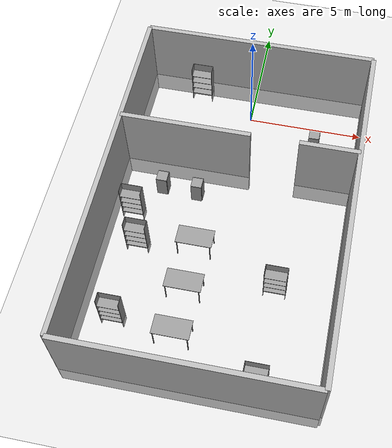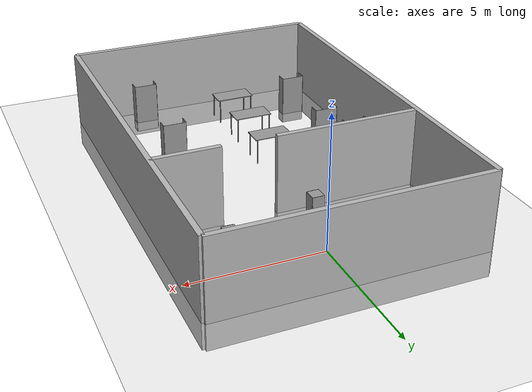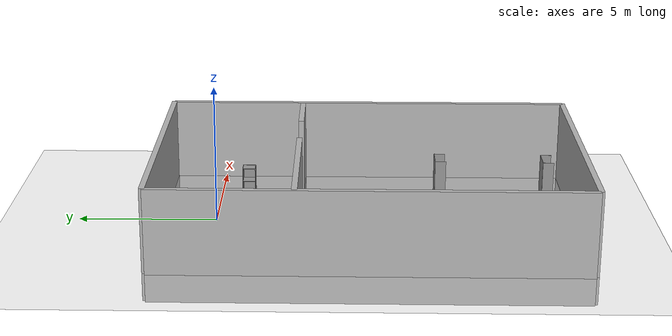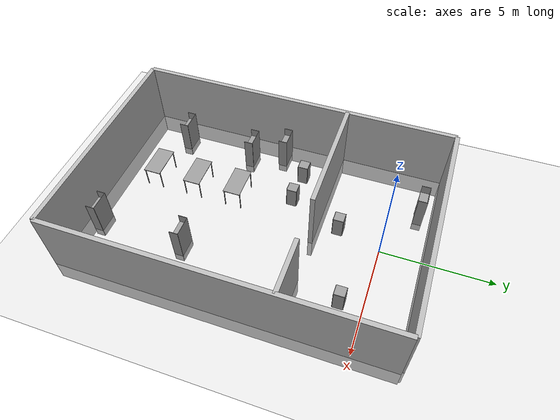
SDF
<sdf version="1.4">
 <world name="default">
  <physics type="ode">
   <gravity>0.000000 0.000000 -9.810000</gravity>
   <ode>
    <solver><type>quick</type><iters>20</iters><sor>1.000000</sor></solver>
    <constraints>
     <cfm>0.000000</cfm>
     <erp>0.200000</erp>
     <contact_max_correcting_vel>100.000000</contact_max_correcting_vel>
     <contact_surface_layer>0.000000</contact_surface_layer>
    </constraints>
   </ode>
   <real_time_update_rate>1000.000000</real_time_update_rate>
   <max_step_size>0.001000</max_step_size>
   <real_time_factor>1.000000</real_time_factor>
   <max_contacts>20</max_contacts>
  </physics>
  <plugin name="gz::sim::systems::Physics" filename="gz-sim-physics-system"/>
  <plugin name="gz::sim::systems::UserCommands" filename="gz-sim-user-commands-system"/>
  <plugin name="gz::sim::systems::SceneBroadcaster" filename="gz-sim-scene-broadcaster-system"/>
  <plugin name="gz::sim::systems::Contact" filename="gz-sim-contact-system"/>
  <plugin name="gz::sim::systems::Imu" filename="gz-sim-imu-system"/>
  <plugin name="gz::sim::systems::AirPressure" filename="gz-sim-air-pressure-system"/>
  <plugin name="gz::sim::systems::AirSpeed" filename="gz-sim-air-speed-system"/>
  <plugin name="gz::sim::systems::ApplyLinkWrench" filename="gz-sim-apply-link-wrench-system"/>
  <plugin name="gz::sim::systems::NavSat" filename="gz-sim-navsat-system"/>
  <plugin name="gz::sim::systems::Sensors" filename="gz-sim-sensors-system"/>
  <light name="sun" type="directional">
   <pose>0.000000 0.000000 10.000000 0.000000 0.000000 0.000000</pose>
   <diffuse>0.800000 0.800000 0.800000 1.000000</diffuse>
   <specular>0.200000 0.200000 0.200000 1.000000</specular>
   <attenuation>
    <range>1000.000000</range>
    <constant>0.900000</constant>
    <linear>0.010000</linear>
    <quadratic>0.001000</quadratic>
   </attenuation>
   <direction>0.500000 0.100000 -0.900000</direction>
  </light>
  <model name="ground_plane">
   <static>1</static>
   <link name="link">
    <collision name="collision">
     <geometry>
      <plane><normal>0.000000 0.000000 1.000000</normal><size>100.000000 100.000000</size></plane>
     </geometry>
     <surface><friction><ode><mu>100.000000</mu><mu2>50.000000</mu2></ode></friction></surface>
    </collision>
    <visual name="visual">
     <cast_shadows>0</cast_shadows>
     <geometry>
      <plane><normal>0.000000 0.000000 1.000000</normal><size>100.000000 100.000000</size></plane>
     </geometry>
     <material><script><uri>file://media/gazebo.material</uri><name>Gazebo/Grey</name></script></material>
    </visual>
    <velocity_decay><linear>0.000000</linear><angular>0.000000</angular></velocity_decay>
   </link>
  </model>
  <model name="wall_1_model">
   <pose>0.0 -13.0 1.0 0.0 0.0 0.0</pose>
   <static>1</static>
   <link name="wall_1_body">
    <inertial>
     <mass>1.000000</mass>
     <inertia>
      <ixx>1.000000</ixx>
      <ixy>0.000000</ixy>
      <ixz>0.000000</ixz>
      <iyy>1.000000</iyy>
      <iyz>0.000000</iyz>
      <izz>1.000000</izz>
     </inertia>
    </inertial>
    <collision name="collision">
     <geometry><box><size>10.000000 0.200000 4.000000</size></box></geometry>
    </collision>
    <visual name="visual"><geometry><box><size>10.000000 0.200000 4.000000</size></box></geometry></visual>
    <velocity_decay><linear>0.000000</linear><angular>0.000000</angular></velocity_decay>
   </link>
  </model>
  <model name="wall_2_model">
   <pose>0.0 2.0 1.0 0.0 0.0 0.0</pose>
   <static>1</static>
   <link name="wall_2_body">
    <inertial>
     <mass>1.000000</mass>
     <inertia>
      <ixx>1.000000</ixx>
      <ixy>0.000000</ixy>
      <ixz>0.000000</ixz>
      <iyy>1.000000</iyy>
      <iyz>0.000000</iyz>
      <izz>1.000000</izz>
     </inertia>
    </inertial>
    <collision name="collision">
     <geometry><box><size>10.000000 0.200000 4.000000</size></box></geometry>
    </collision>
    <visual name="visual"><geometry><box><size>10.000000 0.200000 4.000000</size></box></geometry></visual>
    <velocity_decay><linear>0.000000</linear><angular>0.000000</angular></velocity_decay>
   </link>
  </model>
  <model name="wall_3_model">
   <pose>-5.0 -5.5 1.0 0.0 0.0 0.0</pose>
   <static>1</static>
   <link name="wall_3_body">
    <inertial>
     <mass>1.000000</mass>
     <inertia>
      <ixx>1.000000</ixx>
      <ixy>0.000000</ixy>
      <ixz>0.000000</ixz>
      <iyy>1.000000</iyy>
      <iyz>0.000000</iyz>
      <izz>1.000000</izz>
     </inertia>
    </inertial>
    <collision name="collision">
     <geometry><box><size>0.200000 15.000000 4.000000</size></box></geometry>
    </collision>
    <visual name="visual"><geometry><box><size>0.200000 15.000000 4.000000</size></box></geometry></visual>
    <velocity_decay><linear>0.000000</linear><angular>0.000000</angular></velocity_decay>
   </link>
  </model>
  <model name="wall_4_model">
   <pose>5.0 -5.5 1.0 0.0 0.0 0.0</pose>
   <static>1</static>
   <link name="wall_4_body">
    <inertial>
     <mass>1.000000</mass>
     <inertia>
      <ixx>1.000000</ixx>
      <ixy>0.000000</ixy>
      <ixz>0.000000</ixz>
      <iyy>1.000000</iyy>
      <iyz>0.000000</iyz>
      <izz>1.000000</izz>
     </inertia>
    </inertial>
    <collision name="collision">
     <geometry><box><size>0.200000 15.000000 4.000000</size></box></geometry>
    </collision>
    <visual name="visual"><geometry><box><size>0.200000 15.000000 4.000000</size></box></geometry></visual>
    <velocity_decay><linear>0.000000</linear><angular>0.000000</angular></velocity_decay>
   </link>
  </model>
  <model name="wall_5_model">
   <pose>-2.25 -3.0 1.0 0.0 0.0 0.0</pose>
   <static>1</static>
   <link name="wall_5_body">
    <inertial>
     <mass>1.000000</mass>
     <inertia>
      <ixx>1.000000</ixx>
      <ixy>0.000000</ixy>
      <ixz>0.000000</ixz>
      <iyy>1.000000</iyy>
      <iyz>0.000000</iyz>
      <izz>1.000000</izz>
     </inertia>
    </inertial>
    <collision name="collision">
     <geometry><box><size>5.500000 0.200000 4.000000</size></box></geometry>
    </collision>
    <visual name="visual"><geometry><box><size>5.500000 0.200000 4.000000</size></box></geometry></visual>
    <velocity_decay><linear>0.000000</linear><angular>0.000000</angular></velocity_decay>
   </link>
  </model>
  <model name="wall_6_model">
   <pose>3.75 -3.0 1.0 0.0 0.0 0.0</pose>
   <static>1</static>
   <link name="wall_6_body">
    <inertial>
     <mass>1.000000</mass>
     <inertia>
      <ixx>1.000000</ixx>
      <ixy>0.000000</ixy>
      <ixz>0.000000</ixz>
      <iyy>1.000000</iyy>
      <iyz>0.000000</iyz>
      <izz>1.000000</izz>
     </inertia>
    </inertial>
    <collision name="collision">
     <geometry><box><size>2.500000 0.200000 4.000000</size></box></geometry>
    </collision>
    <visual name="visual"><geometry><box><size>2.500000 0.200000 4.000000</size></box></geometry></visual>
    <velocity_decay><linear>0.000000</linear><angular>0.000000</angular></velocity_decay>
   </link>
  </model>
  <scene>
   <ambient>0.200000 0.200000 0.200000 1.000000</ambient>
   <background>0.700000 0.700000 0.700000 1.000000</background>
   <shadows>1</shadows>
  </scene>
  <model name="bookshelf_1">
   <static>1</static>
   <link name="link">
    <inertial><mass>1.000000</mass></inertial>
    <collision name="back">
     <pose>0.000000 0.005000 0.600000 0.000000 0.000000 0.000000</pose>
     <geometry><box><size>0.900000 0.010000 2.00000</size></box></geometry>
    </collision>
    <visual name="visual1">
     <pose>0.000000 0.005000 0.600000 0.000000 0.000000 0.000000</pose>
     <geometry><box><size>0.900000 0.010000 2.00000</size></box></geometry>
     <material><script><uri>file://media/gazebo.material</uri><name>Gazebo/Grey</name></script></material>
    </visual>
    <collision name="left_side">
     <pose>0.450000 -0.195000 0.600000 0.000000 0.000000 0.000000</pose>
     <geometry><box><size>0.020000 0.400000 2.00000</size></box></geometry>
    </collision>
    <visual name="visual2">
     <pose>0.450000 -0.195000 0.600000 0.000000 0.000000 0.000000</pose>
     <geometry><box><size>0.020000 0.400000 2.00000</size></box></geometry>
     <material><script><uri>file://media/gazebo.material</uri><name>Gazebo/Grey</name></script></material>
    </visual>
    <collision name="right_side">
     <pose>-0.450000 -0.195000 0.600000 0.000000 0.000000 0.000000</pose>
     <geometry><box><size>0.020000 0.400000 2.00000</size></box></geometry>
    </collision>
    <visual name="visual3">
     <pose>-0.450000 -0.195000 0.600000 0.000000 0.000000 0.000000</pose>
     <geometry><box><size>0.020000 0.400000 2.00000</size></box></geometry>
     <material><script><uri>file://media/gazebo.material</uri><name>Gazebo/Grey</name></script></material>
    </visual>
    <collision name="bottom">
     <pose>0.000000 -0.195000 0.030000 0.000000 0.000000 0.000000</pose>
     <geometry><box><size>0.880000 0.400000 0.060000</size></box></geometry>
    </collision>
    <visual name="visual4">
     <pose>0.000000 -0.195000 0.030000 0.000000 0.000000 0.000000</pose>
     <geometry><box><size>0.880000 0.400000 0.060000</size></box></geometry>
     <material><script><uri>file://media/gazebo.material</uri><name>Gazebo/Grey</name></script></material>
    </visual>
    <collision name="top">
     <pose>0.000000 -0.195000 1.190000 0.000000 0.000000 0.000000</pose>
     <geometry><box><size>0.880000 0.400000 0.020000</size></box></geometry>
    </collision>
    <visual name="visual5">
     <pose>0.000000 -0.195000 1.190000 0.000000 0.000000 0.000000</pose>
     <geometry><box><size>0.880000 0.400000 0.020000</size></box></geometry>
     <material><script><uri>file://media/gazebo.material</uri><name>Gazebo/Grey</name></script></material>
    </visual>
    <collision name="low_shelf">
     <pose>0.000000 -0.195000 0.430000 0.000000 0.000000 0.000000</pose>
     <geometry><box><size>0.880000 0.400000 0.020000</size></box></geometry>
    </collision>
    <visual name="visual6">
     <pose>0.000000 -0.195000 0.430000 0.000000 0.000000 0.000000</pose>
     <geometry><box><size>0.880000 0.400000 0.020000</size></box></geometry>
     <material><script><uri>file://media/gazebo.material</uri><name>Gazebo/Grey</name></script></material>
    </visual>
    <collision name="high_shelf">
     <pose>0.000000 -0.195000 0.800000 0.000000 0.000000 0.000000</pose>
     <geometry><box><size>0.880000 0.400000 0.020000</size></box></geometry>
    </collision>
    <visual name="visual7">
     <pose>0.000000 -0.195000 0.800000 0.000000 0.000000 0.000000</pose>
     <geometry><box><size>0.880000 0.400000 0.020000</size></box></geometry>
     <material><script><uri>file://media/gazebo.material</uri><name>Gazebo/Grey</name></script></material>
    </visual>
    <velocity_decay><linear>0.000000</linear><angular>0.000000</angular></velocity_decay>
   </link>
   <pose>-2.49816 1.46785 0.0 0.0 0.0 0.0</pose>
  </model>
  <model name="table">
   <static>1</static>
   <link name="link">
    <collision name="surface">
     <pose>0.000000 0.000000 1.000000 0.000000 0.000000 0.000000</pose>
     <geometry><box><size>1.500000 0.800000 0.030000</size></box></geometry>
    </collision>
    <visual name="visual1">
     <pose>0.000000 0.000000 1.000000 0.000000 0.000000 0.000000</pose>
     <geometry><box><size>1.500000 0.800000 0.030000</size></box></geometry>
     <material><script><uri>file://media/gazebo.material</uri><name>Gazebo/Grey</name></script></material>
    </visual>
    <collision name="front_left_leg">
     <pose>0.680000 0.380000 0.500000 0.000000 0.000000 0.000000</pose>
     <geometry><cylinder><radius>0.020000</radius><length>1.000000</length></cylinder></geometry>
    </collision>
    <visual name="front_left_leg">
     <pose>0.680000 0.380000 0.500000 0.000000 0.000000 0.000000</pose>
     <geometry><cylinder><radius>0.020000</radius><length>1.000000</length></cylinder></geometry>
     <material><script><uri>file://media/gazebo.material</uri><name>Gazebo/Grey</name></script></material>
    </visual>
    <collision name="front_right_leg">
     <pose>0.680000 -0.380000 0.500000 0.000000 0.000000 0.000000</pose>
     <geometry><cylinder><radius>0.020000</radius><length>1.000000</length></cylinder></geometry>
    </collision>
    <visual name="front_right_leg">
     <pose>0.680000 -0.380000 0.500000 0.000000 0.000000 0.000000</pose>
     <geometry><cylinder><radius>0.020000</radius><length>1.000000</length></cylinder></geometry>
     <material><script><uri>file://media/gazebo.material</uri><name>Gazebo/Grey</name></script></material>
    </visual>
    <collision name="back_right_leg">
     <pose>-0.680000 -0.380000 0.500000 0.000000 0.000000 0.000000</pose>
     <geometry><cylinder><radius>0.020000</radius><length>1.000000</length></cylinder></geometry>
    </collision>
    <visual name="back_right_leg">
     <pose>-0.680000 -0.380000 0.500000 0.000000 0.000000 0.000000</pose>
     <geometry><cylinder><radius>0.020000</radius><length>1.000000</length></cylinder></geometry>
     <material><script><uri>file://media/gazebo.material</uri><name>Gazebo/Grey</name></script></material>
    </visual>
    <collision name="back_left_leg">
     <pose>-0.680000 0.380000 0.500000 0.000000 0.000000 0.000000</pose>
     <geometry><cylinder><radius>0.020000</radius><length>1.000000</length></cylinder></geometry>
    </collision>
    <visual name="back_left_leg">
     <pose>-0.680000 0.380000 0.500000 0.000000 0.000000 0.000000</pose>
     <geometry><cylinder><radius>0.020000</radius><length>1.000000</length></cylinder></geometry>
     <material><script><uri>file://media/gazebo.material</uri><name>Gazebo/Grey</name></script></material>
    </visual>
    <velocity_decay><linear>0.000000</linear><angular>0.000000</angular></velocity_decay>
   </link>
   <pose>-1.0 -9.0 0.0 0.0 0.0 0.0</pose>
  </model>
  <model name="cabinet_1">
   <static>1</static>
   <link name="cabinet_bottom_plate">
    <inertial>
     <pose>0.000000 0.000000 -1.000000 0.000000 0.000000 0.000000</pose>
     <inertia>
      <ixx>2.050000</ixx>
      <ixy>0.000000</ixy>
      <ixz>0.000000</ixz>
      <iyy>2.050000</iyy>
      <iyz>0.000000</iyz>
      <izz>2.050000</izz>
     </inertia>
     <mass>25.000000</mass>
    </inertial>
    <collision name="cabinet_bottom_plate_geom">
     <pose>0.000000 0.000000 0.010000 0.000000 0.000000 0.000000</pose>
     <geometry><box><size>0.450000 0.450000 0.020000</size></box></geometry>
    </collision>
    <visual name="cabinet_bottom_plate_geom_visual">
     <pose>0.000000 0.000000 0.010000 0.000000 0.000000 0.000000</pose>
     <geometry><box><size>0.450000 0.450000 0.020000</size></box></geometry>
     <material><script><uri>file://media/gazebo.material</uri><name>Gazebo/Grey</name></script></material>
    </visual>
    <collision name="cabinet_bottom_plate_geom_cabinet_back_plate">
     <pose>0.235000 0.000000 0.510000 0.000000 0.000000 0.000000</pose>
     <geometry><box><size>0.020000 0.450000 1.020000</size></box></geometry>
    </collision>
    <visual name="cabinet_bottom_plate_geom_cabinet_back_plate_visual">
     <pose>0.235000 0.000000 0.510000 0.000000 0.000000 0.000000</pose>
     <geometry><box><size>0.020000 0.450000 1.020000</size></box></geometry>
     <material><script><uri>file://media/gazebo.material</uri><name>Gazebo/Grey</name></script></material>
    </visual>
    <collision name="cabinet_bottom_plate_geom_cabinet_left_plate">
     <pose>0.000000 0.235000 0.510000 0.000000 0.000000 0.000000</pose>
     <geometry><box><size>0.450000 0.020000 1.020000</size></box></geometry>
    </collision>
    <visual name="cabinet_bottom_plate_geom_cabinet_left_plate_visual">
     <pose>0.000000 0.235000 0.510000 0.000000 0.000000 0.000000</pose>
     <geometry><box><size>0.450000 0.020000 1.020000</size></box></geometry>
     <material><script><uri>file://media/gazebo.material</uri><name>Gazebo/Grey</name></script></material>
    </visual>
    <collision name="cabinet_bottom_plate_geom_cabinet_middle_plate">
     <pose>0.000000 0.000000 0.510000 0.000000 0.000000 0.000000</pose>
     <geometry><box><size>0.450000 0.450000 0.020000</size></box></geometry>
    </collision>
    <visual name="cabinet_bottom_plate_geom_cabinet_middle_plate_visual">
     <pose>0.000000 0.000000 0.510000 0.000000 0.000000 0.000000</pose>
     <geometry><box><size>0.450000 0.450000 0.020000</size></box></geometry>
     <material><script><uri>file://media/gazebo.material</uri><name>Gazebo/Grey</name></script></material>
    </visual>
    <collision name="cabinet_bottom_plate_geom_cabinet_right_plate">
     <pose>0.000000 -0.235000 0.510000 0.000000 0.000000 0.000000</pose>
     <geometry><box><size>0.450000 0.020000 1.020000</size></box></geometry>
    </collision>
    <visual name="cabinet_bottom_plate_geom_cabinet_right_plate_visual">
     <pose>0.000000 -0.235000 0.510000 0.000000 0.000000 0.000000</pose>
     <geometry><box><size>0.450000 0.020000 1.020000</size></box></geometry>
     <material><script><uri>file://media/gazebo.material</uri><name>Gazebo/Grey</name></script></material>
    </visual>
    <collision name="cabinet_bottom_plate_geom_cabinet_top_plate">
     <pose>0.000000 0.000000 1.010000 0.000000 0.000000 0.000000</pose>
     <geometry><box><size>0.450000 0.450000 0.020000</size></box></geometry>
    </collision>
    <visual name="cabinet_bottom_plate_geom_cabinet_top_plate_visual">
     <pose>0.000000 0.000000 1.010000 0.000000 0.000000 0.000000</pose>
     <geometry><box><size>0.450000 0.450000 0.020000</size></box></geometry>
     <material><script><uri>file://media/gazebo.material</uri><name>Gazebo/Grey</name></script></material>
    </visual>
    <velocity_decay><linear>0.000000</linear><angular>0.000000</angular></velocity_decay>
   </link>
   <pose>-3.0 -4.40005 0.0 0.0 0.0 0.0</pose>
  </model>
  <model name="cabinet_2">
   <static>1</static>
   <link name="cabinet_bottom_plate">
    <inertial>
     <pose>0.000000 0.000000 -1.000000 0.000000 0.000000 0.000000</pose>
     <inertia>
      <ixx>2.050000</ixx>
      <ixy>0.000000</ixy>
      <ixz>0.000000</ixz>
      <iyy>2.050000</iyy>
      <iyz>0.000000</iyz>
      <izz>2.050000</izz>
     </inertia>
     <mass>25.000000</mass>
    </inertial>
    <collision name="cabinet_bottom_plate_geom">
     <pose>0.000000 0.000000 0.010000 0.000000 0.000000 0.000000</pose>
     <geometry><box><size>0.450000 0.450000 0.020000</size></box></geometry>
    </collision>
    <visual name="cabinet_bottom_plate_geom_visual">
     <pose>0.000000 0.000000 0.010000 0.000000 0.000000 0.000000</pose>
     <geometry><box><size>0.450000 0.450000 0.020000</size></box></geometry>
     <material><script><uri>file://media/gazebo.material</uri><name>Gazebo/Grey</name></script></material>
    </visual>
    <collision name="cabinet_bottom_plate_geom_cabinet_back_plate">
     <pose>0.235000 0.000000 0.510000 0.000000 0.000000 0.000000</pose>
     <geometry><box><size>0.020000 0.450000 1.020000</size></box></geometry>
    </collision>
    <visual name="cabinet_bottom_plate_geom_cabinet_back_plate_visual">
     <pose>0.235000 0.000000 0.510000 0.000000 0.000000 0.000000</pose>
     <geometry><box><size>0.020000 0.450000 1.020000</size></box></geometry>
     <material><script><uri>file://media/gazebo.material</uri><name>Gazebo/Grey</name></script></material>
    </visual>
    <collision name="cabinet_bottom_plate_geom_cabinet_left_plate">
     <pose>0.000000 0.235000 0.510000 0.000000 0.000000 0.000000</pose>
     <geometry><box><size>0.450000 0.020000 1.020000</size></box></geometry>
    </collision>
    <visual name="cabinet_bottom_plate_geom_cabinet_left_plate_visual">
     <pose>0.000000 0.235000 0.510000 0.000000 0.000000 0.000000</pose>
     <geometry><box><size>0.450000 0.020000 1.020000</size></box></geometry>
     <material><script><uri>file://media/gazebo.material</uri><name>Gazebo/Grey</name></script></material>
    </visual>
    <collision name="cabinet_bottom_plate_geom_cabinet_middle_plate">
     <pose>0.000000 0.000000 0.510000 0.000000 0.000000 0.000000</pose>
     <geometry><box><size>0.450000 0.450000 0.020000</size></box></geometry>
    </collision>
    <visual name="cabinet_bottom_plate_geom_cabinet_middle_plate_visual">
     <pose>0.000000 0.000000 0.510000 0.000000 0.000000 0.000000</pose>
     <geometry><box><size>0.450000 0.450000 0.020000</size></box></geometry>
     <material><script><uri>file://media/gazebo.material</uri><name>Gazebo/Grey</name></script></material>
    </visual>
    <collision name="cabinet_bottom_plate_geom_cabinet_right_plate">
     <pose>0.000000 -0.235000 0.510000 0.000000 0.000000 0.000000</pose>
     <geometry><box><size>0.450000 0.020000 1.020000</size></box></geometry>
    </collision>
    <visual name="cabinet_bottom_plate_geom_cabinet_right_plate_visual">
     <pose>0.000000 -0.235000 0.510000 0.000000 0.000000 0.000000</pose>
     <geometry><box><size>0.450000 0.020000 1.020000</size></box></geometry>
     <material><script><uri>file://media/gazebo.material</uri><name>Gazebo/Grey</name></script></material>
    </visual>
    <collision name="cabinet_bottom_plate_geom_cabinet_top_plate">
     <pose>0.000000 0.000000 1.010000 0.000000 0.000000 0.000000</pose>
     <geometry><box><size>0.450000 0.450000 0.020000</size></box></geometry>
    </collision>
    <visual name="cabinet_bottom_plate_geom_cabinet_top_plate_visual">
     <pose>0.000000 0.000000 1.010000 0.000000 0.000000 0.000000</pose>
     <geometry><box><size>0.450000 0.450000 0.020000</size></box></geometry>
     <material><script><uri>file://media/gazebo.material</uri><name>Gazebo/Grey</name></script></material>
    </visual>
    <velocity_decay><linear>0.000000</linear><angular>0.000000</angular></velocity_decay>
   </link>
   <pose>-1.49183 -4.45622 0.0 0.0 0.0 0.0</pose>
  </model>
  <model name="bookshelf_2">
   <static>1</static>
   <link name="link">
    <inertial><mass>1.000000</mass></inertial>
    <collision name="back">
     <pose>0.000000 0.005000 0.600000 0.000000 0.000000 0.000000</pose>
     <geometry><box><size>0.900000 0.010000 2.00000</size></box></geometry>
    </collision>
    <visual name="visual1">
     <pose>0.000000 0.005000 0.600000 0.000000 0.000000 0.000000</pose>
     <geometry><box><size>0.900000 0.010000 2.00000</size></box></geometry>
     <material><script><uri>file://media/gazebo.material</uri><name>Gazebo/Grey</name></script></material>
    </visual>
    <collision name="left_side">
     <pose>0.450000 -0.195000 0.600000 0.000000 0.000000 0.000000</pose>
     <geometry><box><size>0.020000 0.400000 2.00000</size></box></geometry>
    </collision>
    <visual name="visual2">
     <pose>0.450000 -0.195000 0.600000 0.000000 0.000000 0.000000</pose>
     <geometry><box><size>0.020000 0.400000 2.00000</size></box></geometry>
     <material><script><uri>file://media/gazebo.material</uri><name>Gazebo/Grey</name></script></material>
    </visual>
    <collision name="right_side">
     <pose>-0.450000 -0.195000 0.600000 0.000000 0.000000 0.000000</pose>
     <geometry><box><size>0.020000 0.400000 2.00000</size></box></geometry>
    </collision>
    <visual name="visual3">
     <pose>-0.450000 -0.195000 0.600000 0.000000 0.000000 0.000000</pose>
     <geometry><box><size>0.020000 0.400000 2.00000</size></box></geometry>
     <material><script><uri>file://media/gazebo.material</uri><name>Gazebo/Grey</name></script></material>
    </visual>
    <collision name="bottom">
     <pose>0.000000 -0.195000 0.030000 0.000000 0.000000 0.000000</pose>
     <geometry><box><size>0.880000 0.400000 0.060000</size></box></geometry>
    </collision>
    <visual name="visual4">
     <pose>0.000000 -0.195000 0.030000 0.000000 0.000000 0.000000</pose>
     <geometry><box><size>0.880000 0.400000 0.060000</size></box></geometry>
     <material><script><uri>file://media/gazebo.material</uri><name>Gazebo/Grey</name></script></material>
    </visual>
    <collision name="top">
     <pose>0.000000 -0.195000 1.190000 0.000000 0.000000 0.000000</pose>
     <geometry><box><size>0.880000 0.400000 0.020000</size></box></geometry>
    </collision>
    <visual name="visual5">
     <pose>0.000000 -0.195000 1.190000 0.000000 0.000000 0.000000</pose>
     <geometry><box><size>0.880000 0.400000 0.020000</size></box></geometry>
     <material><script><uri>file://media/gazebo.material</uri><name>Gazebo/Grey</name></script></material>
    </visual>
    <collision name="low_shelf">
     <pose>0.000000 -0.195000 0.430000 0.000000 0.000000 0.000000</pose>
     <geometry><box><size>0.880000 0.400000 0.020000</size></box></geometry>
    </collision>
    <visual name="visual6">
     <pose>0.000000 -0.195000 0.430000 0.000000 0.000000 0.000000</pose>
     <geometry><box><size>0.880000 0.400000 0.020000</size></box></geometry>
     <material><script><uri>file://media/gazebo.material</uri><name>Gazebo/Grey</name></script></material>
    </visual>
    <collision name="high_shelf">
     <pose>0.000000 -0.195000 0.800000 0.000000 0.000000 0.000000</pose>
     <geometry><box><size>0.880000 0.400000 0.020000</size></box></geometry>
    </collision>
    <visual name="visual7">
     <pose>0.000000 -0.195000 0.800000 0.000000 0.000000 0.000000</pose>
     <geometry><box><size>0.880000 0.400000 0.020000</size></box></geometry>
     <material><script><uri>file://media/gazebo.material</uri><name>Gazebo/Grey</name></script></material>
    </visual>
    <velocity_decay><linear>0.000000</linear><angular>0.000000</angular></velocity_decay>
   </link>
   <pose>-3.41849 -7.0 0.0 0.0 0.0 0.0</pose>
  </model>
  <model name="table_0">
   <static>1</static>
   <link name="link">
    <collision name="surface">
     <pose>0.000000 0.000000 1.000000 0.000000 0.000000 0.000000</pose>
     <geometry><box><size>1.500000 0.800000 0.030000</size></box></geometry>
    </collision>
    <visual name="visual1">
     <pose>0.000000 0.000000 1.000000 0.000000 0.000000 0.000000</pose>
     <geometry><box><size>1.500000 0.800000 0.030000</size></box></geometry>
     <material><script><uri>file://media/gazebo.material</uri><name>Gazebo/Grey</name></script></material>
    </visual>
    <collision name="front_left_leg">
     <pose>0.680000 0.380000 0.500000 0.000000 0.000000 0.000000</pose>
     <geometry><cylinder><radius>0.020000</radius><length>1.000000</length></cylinder></geometry>
    </collision>
    <visual name="front_left_leg">
     <pose>0.680000 0.380000 0.500000 0.000000 0.000000 0.000000</pose>
     <geometry><cylinder><radius>0.020000</radius><length>1.000000</length></cylinder></geometry>
     <material><script><uri>file://media/gazebo.material</uri><name>Gazebo/Grey</name></script></material>
    </visual>
    <collision name="front_right_leg">
     <pose>0.680000 -0.380000 0.500000 0.000000 0.000000 0.000000</pose>
     <geometry><cylinder><radius>0.020000</radius><length>1.000000</length></cylinder></geometry>
    </collision>
    <visual name="front_right_leg">
     <pose>0.680000 -0.380000 0.500000 0.000000 0.000000 0.000000</pose>
     <geometry><cylinder><radius>0.020000</radius><length>1.000000</length></cylinder></geometry>
     <material><script><uri>file://media/gazebo.material</uri><name>Gazebo/Grey</name></script></material>
    </visual>
    <collision name="back_right_leg">
     <pose>-0.680000 -0.380000 0.500000 0.000000 0.000000 0.000000</pose>
     <geometry><cylinder><radius>0.020000</radius><length>1.000000</length></cylinder></geometry>
    </collision>
    <visual name="back_right_leg">
     <pose>-0.680000 -0.380000 0.500000 0.000000 0.000000 0.000000</pose>
     <geometry><cylinder><radius>0.020000</radius><length>1.000000</length></cylinder></geometry>
     <material><script><uri>file://media/gazebo.material</uri><name>Gazebo/Grey</name></script></material>
    </visual>
    <collision name="back_left_leg">
     <pose>-0.680000 0.380000 0.500000 0.000000 0.000000 0.000000</pose>
     <geometry><cylinder><radius>0.020000</radius><length>1.000000</length></cylinder></geometry>
    </collision>
    <visual name="back_left_leg">
     <pose>-0.680000 0.380000 0.500000 0.000000 0.000000 0.000000</pose>
     <geometry><cylinder><radius>0.020000</radius><length>1.000000</length></cylinder></geometry>
     <material><script><uri>file://media/gazebo.material</uri><name>Gazebo/Grey</name></script></material>
    </visual>
    <velocity_decay><linear>0.000000</linear><angular>0.000000</angular></velocity_decay>
   </link>
   <pose>-1.0 -7.0 0.0 0.0 0.0 0.0</pose>
  </model>
  <model name="table_1">
   <static>1</static>
   <link name="link">
    <collision name="surface">
     <pose>0.000000 0.000000 1.000000 0.000000 0.000000 0.000000</pose>
     <geometry><box><size>1.500000 0.800000 0.030000</size></box></geometry>
    </collision>
    <visual name="visual1">
     <pose>0.000000 0.000000 1.000000 0.000000 0.000000 0.000000</pose>
     <geometry><box><size>1.500000 0.800000 0.030000</size></box></geometry>
     <material><script><uri>file://media/gazebo.material</uri><name>Gazebo/Grey</name></script></material>
    </visual>
    <collision name="front_left_leg">
     <pose>0.680000 0.380000 0.500000 0.000000 0.000000 0.000000</pose>
     <geometry><cylinder><radius>0.020000</radius><length>1.000000</length></cylinder></geometry>
    </collision>
    <visual name="front_left_leg">
     <pose>0.680000 0.380000 0.500000 0.000000 0.000000 0.000000</pose>
     <geometry><cylinder><radius>0.020000</radius><length>1.000000</length></cylinder></geometry>
     <material><script><uri>file://media/gazebo.material</uri><name>Gazebo/Grey</name></script></material>
    </visual>
    <collision name="front_right_leg">
     <pose>0.680000 -0.380000 0.500000 0.000000 0.000000 0.000000</pose>
     <geometry><cylinder><radius>0.020000</radius><length>1.000000</length></cylinder></geometry>
    </collision>
    <visual name="front_right_leg">
     <pose>0.680000 -0.380000 0.500000 0.000000 0.000000 0.000000</pose>
     <geometry><cylinder><radius>0.020000</radius><length>1.000000</length></cylinder></geometry>
     <material><script><uri>file://media/gazebo.material</uri><name>Gazebo/Grey</name></script></material>
    </visual>
    <collision name="back_right_leg">
     <pose>-0.680000 -0.380000 0.500000 0.000000 0.000000 0.000000</pose>
     <geometry><cylinder><radius>0.020000</radius><length>1.000000</length></cylinder></geometry>
    </collision>
    <visual name="back_right_leg">
     <pose>-0.680000 -0.380000 0.500000 0.000000 0.000000 0.000000</pose>
     <geometry><cylinder><radius>0.020000</radius><length>1.000000</length></cylinder></geometry>
     <material><script><uri>file://media/gazebo.material</uri><name>Gazebo/Grey</name></script></material>
    </visual>
    <collision name="back_left_leg">
     <pose>-0.680000 0.380000 0.500000 0.000000 0.000000 0.000000</pose>
     <geometry><cylinder><radius>0.020000</radius><length>1.000000</length></cylinder></geometry>
    </collision>
    <visual name="back_left_leg">
     <pose>-0.680000 0.380000 0.500000 0.000000 0.000000 0.000000</pose>
     <geometry><cylinder><radius>0.020000</radius><length>1.000000</length></cylinder></geometry>
     <material><script><uri>file://media/gazebo.material</uri><name>Gazebo/Grey</name></script></material>
    </visual>
    <velocity_decay><linear>0.000000</linear><angular>0.000000</angular></velocity_decay>
   </link>
   <pose>-1.0 -11.0 0.0 0.0 0.0 0.0</pose>
  </model>
  <model name="cabinet_3">
   <static>1</static>
   <link name="cabinet_bottom_plate">
    <inertial>
     <pose>0.000000 0.000000 -1.000000 0.000000 0.000000 0.000000</pose>
     <inertia>
      <ixx>2.050000</ixx>
      <ixy>0.000000</ixy>
      <ixz>0.000000</ixz>
      <iyy>2.050000</iyy>
      <iyz>0.000000</iyz>
      <izz>2.050000</izz>
     </inertia>
     <mass>25.000000</mass>
    </inertial>
    <collision name="cabinet_bottom_plate_geom">
     <pose>0.000000 0.000000 0.010000 0.000000 0.000000 0.000000</pose>
     <geometry><box><size>0.450000 0.450000 0.020000</size></box></geometry>
    </collision>
    <visual name="cabinet_bottom_plate_geom_visual">
     <pose>0.000000 0.000000 0.010000 0.000000 0.000000 0.000000</pose>
     <geometry><box><size>0.450000 0.450000 0.020000</size></box></geometry>
     <material><script><uri>file://media/gazebo.material</uri><name>Gazebo/Grey</name></script></material>
    </visual>
    <collision name="cabinet_bottom_plate_geom_cabinet_back_plate">
     <pose>0.235000 0.000000 0.510000 0.000000 0.000000 0.000000</pose>
     <geometry><box><size>0.020000 0.450000 1.020000</size></box></geometry>
    </collision>
    <visual name="cabinet_bottom_plate_geom_cabinet_back_plate_visual">
     <pose>0.235000 0.000000 0.510000 0.000000 0.000000 0.000000</pose>
     <geometry><box><size>0.020000 0.450000 1.020000</size></box></geometry>
     <material><script><uri>file://media/gazebo.material</uri><name>Gazebo/Grey</name></script></material>
    </visual>
    <collision name="cabinet_bottom_plate_geom_cabinet_left_plate">
     <pose>0.000000 0.235000 0.510000 0.000000 0.000000 0.000000</pose>
     <geometry><box><size>0.450000 0.020000 1.020000</size></box></geometry>
    </collision>
    <visual name="cabinet_bottom_plate_geom_cabinet_left_plate_visual">
     <pose>0.000000 0.235000 0.510000 0.000000 0.000000 0.000000</pose>
     <geometry><box><size>0.450000 0.020000 1.020000</size></box></geometry>
     <material><script><uri>file://media/gazebo.material</uri><name>Gazebo/Grey</name></script></material>
    </visual>
    <collision name="cabinet_bottom_plate_geom_cabinet_middle_plate">
     <pose>0.000000 0.000000 0.510000 0.000000 0.000000 0.000000</pose>
     <geometry><box><size>0.450000 0.450000 0.020000</size></box></geometry>
    </collision>
    <visual name="cabinet_bottom_plate_geom_cabinet_middle_plate_visual">
     <pose>0.000000 0.000000 0.510000 0.000000 0.000000 0.000000</pose>
     <geometry><box><size>0.450000 0.450000 0.020000</size></box></geometry>
     <material><script><uri>file://media/gazebo.material</uri><name>Gazebo/Grey</name></script></material>
    </visual>
    <collision name="cabinet_bottom_plate_geom_cabinet_right_plate">
     <pose>0.000000 -0.235000 0.510000 0.000000 0.000000 0.000000</pose>
     <geometry><box><size>0.450000 0.020000 1.020000</size></box></geometry>
    </collision>
    <visual name="cabinet_bottom_plate_geom_cabinet_right_plate_visual">
     <pose>0.000000 -0.235000 0.510000 0.000000 0.000000 0.000000</pose>
     <geometry><box><size>0.450000 0.020000 1.020000</size></box></geometry>
     <material><script><uri>file://media/gazebo.material</uri><name>Gazebo/Grey</name></script></material>
    </visual>
    <collision name="cabinet_bottom_plate_geom_cabinet_top_plate">
     <pose>0.000000 0.000000 1.010000 0.000000 0.000000 0.000000</pose>
     <geometry><box><size>0.450000 0.450000 0.020000</size></box></geometry>
    </collision>
    <visual name="cabinet_bottom_plate_geom_cabinet_top_plate_visual">
     <pose>0.000000 0.000000 1.010000 0.000000 0.000000 0.000000</pose>
     <geometry><box><size>0.450000 0.450000 0.020000</size></box></geometry>
     <material><script><uri>file://media/gazebo.material</uri><name>Gazebo/Grey</name></script></material>
    </visual>
    <velocity_decay><linear>0.000000</linear><angular>0.000000</angular></velocity_decay>
   </link>
   <pose>3.0 -1.0 0.0 0.0 0.0 0.0</pose>
  </model>
  <model name="bookshelf_3">
   <static>1</static>
   <link name="link">
    <inertial><mass>1.000000</mass></inertial>
    <collision name="back">
     <pose>0.000000 0.005000 0.600000 0.000000 0.000000 0.000000</pose>
     <geometry><box><size>0.900000 0.010000 2.00000</size></box></geometry>
    </collision>
    <visual name="visual1">
     <pose>0.000000 0.005000 0.600000 0.000000 0.000000 0.000000</pose>
     <geometry><box><size>0.900000 0.010000 2.00000</size></box></geometry>
     <material><script><uri>file://media/gazebo.material</uri><name>Gazebo/Grey</name></script></material>
    </visual>
    <collision name="left_side">
     <pose>0.450000 -0.195000 0.600000 0.000000 0.000000 0.000000</pose>
     <geometry><box><size>0.020000 0.400000 2.00000</size></box></geometry>
    </collision>
    <visual name="visual2">
     <pose>0.450000 -0.195000 0.600000 0.000000 0.000000 0.000000</pose>
     <geometry><box><size>0.020000 0.400000 2.00000</size></box></geometry>
     <material><script><uri>file://media/gazebo.material</uri><name>Gazebo/Grey</name></script></material>
    </visual>
    <collision name="right_side">
     <pose>-0.450000 -0.195000 0.600000 0.000000 0.000000 0.000000</pose>
     <geometry><box><size>0.020000 0.400000 2.00000</size></box></geometry>
    </collision>
    <visual name="visual3">
     <pose>-0.450000 -0.195000 0.600000 0.000000 0.000000 0.000000</pose>
     <geometry><box><size>0.020000 0.400000 2.00000</size></box></geometry>
     <material><script><uri>file://media/gazebo.material</uri><name>Gazebo/Grey</name></script></material>
    </visual>
    <collision name="bottom">
     <pose>0.000000 -0.195000 0.030000 0.000000 0.000000 0.000000</pose>
     <geometry><box><size>0.880000 0.400000 0.060000</size></box></geometry>
    </collision>
    <visual name="visual4">
     <pose>0.000000 -0.195000 0.030000 0.000000 0.000000 0.000000</pose>
     <geometry><box><size>0.880000 0.400000 0.060000</size></box></geometry>
     <material><script><uri>file://media/gazebo.material</uri><name>Gazebo/Grey</name></script></material>
    </visual>
    <collision name="top">
     <pose>0.000000 -0.195000 1.190000 0.000000 0.000000 0.000000</pose>
     <geometry><box><size>0.880000 0.400000 0.020000</size></box></geometry>
    </collision>
    <visual name="visual5">
     <pose>0.000000 -0.195000 1.190000 0.000000 0.000000 0.000000</pose>
     <geometry><box><size>0.880000 0.400000 0.020000</size></box></geometry>
     <material><script><uri>file://media/gazebo.material</uri><name>Gazebo/Grey</name></script></material>
    </visual>
    <collision name="low_shelf">
     <pose>0.000000 -0.195000 0.430000 0.000000 0.000000 0.000000</pose>
     <geometry><box><size>0.880000 0.400000 0.020000</size></box></geometry>
    </collision>
    <visual name="visual6">
     <pose>0.000000 -0.195000 0.430000 0.000000 0.000000 0.000000</pose>
     <geometry><box><size>0.880000 0.400000 0.020000</size></box></geometry>
     <material><script><uri>file://media/gazebo.material</uri><name>Gazebo/Grey</name></script></material>
    </visual>
    <collision name="high_shelf">
     <pose>0.000000 -0.195000 0.800000 0.000000 0.000000 0.000000</pose>
     <geometry><box><size>0.880000 0.400000 0.020000</size></box></geometry>
    </collision>
    <visual name="visual7">
     <pose>0.000000 -0.195000 0.800000 0.000000 0.000000 0.000000</pose>
     <geometry><box><size>0.880000 0.400000 0.020000</size></box></geometry>
     <material><script><uri>file://media/gazebo.material</uri><name>Gazebo/Grey</name></script></material>
    </visual>
    <velocity_decay><linear>0.000000</linear><angular>0.000000</angular></velocity_decay>
   </link>
   <pose>2.45055 -12.0 0.0 0.0 0.0 0.0</pose>
  </model>
  <model name="bookshelf_4">
   <static>1</static>
   <link name="link">
    <inertial><mass>1.000000</mass></inertial>
    <collision name="back">
     <pose>0.000000 0.005000 0.600000 0.000000 0.000000 0.000000</pose>
     <geometry><box><size>0.900000 0.010000 2.00000</size></box></geometry>
    </collision>
    <visual name="visual1">
     <pose>0.000000 0.005000 0.600000 0.000000 0.000000 0.000000</pose>
     <geometry><box><size>0.900000 0.010000 2.00000</size></box></geometry>
     <material><script><uri>file://media/gazebo.material</uri><name>Gazebo/Grey</name></script></material>
    </visual>
    <collision name="left_side">
     <pose>0.450000 -0.195000 0.600000 0.000000 0.000000 0.000000</pose>
     <geometry><box><size>0.020000 0.400000 2.00000</size></box></geometry>
    </collision>
    <visual name="visual2">
     <pose>0.450000 -0.195000 0.600000 0.000000 0.000000 0.000000</pose>
     <geometry><box><size>0.020000 0.400000 2.00000</size></box></geometry>
     <material><script><uri>file://media/gazebo.material</uri><name>Gazebo/Grey</name></script></material>
    </visual>
    <collision name="right_side">
     <pose>-0.450000 -0.195000 0.600000 0.000000 0.000000 0.000000</pose>
     <geometry><box><size>0.020000 0.400000 2.00000</size></box></geometry>
    </collision>
    <visual name="visual3">
     <pose>-0.450000 -0.195000 0.600000 0.000000 0.000000 0.000000</pose>
     <geometry><box><size>0.020000 0.400000 2.00000</size></box></geometry>
     <material><script><uri>file://media/gazebo.material</uri><name>Gazebo/Grey</name></script></material>
    </visual>
    <collision name="bottom">
     <pose>0.000000 -0.195000 0.030000 0.000000 0.000000 0.000000</pose>
     <geometry><box><size>0.880000 0.400000 0.060000</size></box></geometry>
    </collision>
    <visual name="visual4">
     <pose>0.000000 -0.195000 0.030000 0.000000 0.000000 0.000000</pose>
     <geometry><box><size>0.880000 0.400000 0.060000</size></box></geometry>
     <material><script><uri>file://media/gazebo.material</uri><name>Gazebo/Grey</name></script></material>
    </visual>
    <collision name="top">
     <pose>0.000000 -0.195000 1.190000 0.000000 0.000000 0.000000</pose>
     <geometry><box><size>0.880000 0.400000 0.020000</size></box></geometry>
    </collision>
    <visual name="visual5">
     <pose>0.000000 -0.195000 1.190000 0.000000 0.000000 0.000000</pose>
     <geometry><box><size>0.880000 0.400000 0.020000</size></box></geometry>
     <material><script><uri>file://media/gazebo.material</uri><name>Gazebo/Grey</name></script></material>
    </visual>
    <collision name="low_shelf">
     <pose>0.000000 -0.195000 0.430000 0.000000 0.000000 0.000000</pose>
     <geometry><box><size>0.880000 0.400000 0.020000</size></box></geometry>
    </collision>
    <visual name="visual6">
     <pose>0.000000 -0.195000 0.430000 0.000000 0.000000 0.000000</pose>
     <geometry><box><size>0.880000 0.400000 0.020000</size></box></geometry>
     <material><script><uri>file://media/gazebo.material</uri><name>Gazebo/Grey</name></script></material>
    </visual>
    <collision name="high_shelf">
     <pose>0.000000 -0.195000 0.800000 0.000000 0.000000 0.000000</pose>
     <geometry><box><size>0.880000 0.400000 0.020000</size></box></geometry>
    </collision>
    <visual name="visual7">
     <pose>0.000000 -0.195000 0.800000 0.000000 0.000000 0.000000</pose>
     <geometry><box><size>0.880000 0.400000 0.020000</size></box></geometry>
     <material><script><uri>file://media/gazebo.material</uri><name>Gazebo/Grey</name></script></material>
    </visual>
    <velocity_decay><linear>0.000000</linear><angular>0.000000</angular></velocity_decay>
   </link>
   <pose>2.51316 -8.0 0.0 0.0 0.0 0.0</pose>
  </model>
  <model name="bookshelf_5">
   <static>1</static>
   <link name="link">
    <inertial><mass>1.000000</mass></inertial>
    <collision name="back">
     <pose>0.000000 0.005000 0.600000 0.000000 0.000000 0.000000</pose>
     <geometry><box><size>0.900000 0.010000 2.00000</size></box></geometry>
    </collision>
    <visual name="visual1">
     <pose>0.000000 0.005000 0.600000 0.000000 0.000000 0.000000</pose>
     <geometry><box><size>0.900000 0.010000 2.00000</size></box></geometry>
     <material><script><uri>file://media/gazebo.material</uri><name>Gazebo/Grey</name></script></material>
    </visual>
    <collision name="left_side">
     <pose>0.450000 -0.195000 0.600000 0.000000 0.000000 0.000000</pose>
     <geometry><box><size>0.020000 0.400000 2.00000</size></box></geometry>
    </collision>
    <visual name="visual2">
     <pose>0.450000 -0.195000 0.600000 0.000000 0.000000 0.000000</pose>
     <geometry><box><size>0.020000 0.400000 2.00000</size></box></geometry>
     <material><script><uri>file://media/gazebo.material</uri><name>Gazebo/Grey</name></script></material>
    </visual>
    <collision name="right_side">
     <pose>-0.450000 -0.195000 0.600000 0.000000 0.000000 0.000000</pose>
     <geometry><box><size>0.020000 0.400000 2.00000</size></box></geometry>
    </collision>
    <visual name="visual3">
     <pose>-0.450000 -0.195000 0.600000 0.000000 0.000000 0.000000</pose>
     <geometry><box><size>0.020000 0.400000 2.00000</size></box></geometry>
     <material><script><uri>file://media/gazebo.material</uri><name>Gazebo/Grey</name></script></material>
    </visual>
    <collision name="bottom">
     <pose>0.000000 -0.195000 0.030000 0.000000 0.000000 0.000000</pose>
     <geometry><box><size>0.880000 0.400000 0.060000</size></box></geometry>
    </collision>
    <visual name="visual4">
     <pose>0.000000 -0.195000 0.030000 0.000000 0.000000 0.000000</pose>
     <geometry><box><size>0.880000 0.400000 0.060000</size></box></geometry>
     <material><script><uri>file://media/gazebo.material</uri><name>Gazebo/Grey</name></script></material>
    </visual>
    <collision name="top">
     <pose>0.000000 -0.195000 1.190000 0.000000 0.000000 0.000000</pose>
     <geometry><box><size>0.880000 0.400000 0.020000</size></box></geometry>
    </collision>
    <visual name="visual5">
     <pose>0.000000 -0.195000 1.190000 0.000000 0.000000 0.000000</pose>
     <geometry><box><size>0.880000 0.400000 0.020000</size></box></geometry>
     <material><script><uri>file://media/gazebo.material</uri><name>Gazebo/Grey</name></script></material>
    </visual>
    <collision name="low_shelf">
     <pose>0.000000 -0.195000 0.430000 0.000000 0.000000 0.000000</pose>
     <geometry><box><size>0.880000 0.400000 0.020000</size></box></geometry>
    </collision>
    <visual name="visual6">
     <pose>0.000000 -0.195000 0.430000 0.000000 0.000000 0.000000</pose>
     <geometry><box><size>0.880000 0.400000 0.020000</size></box></geometry>
     <material><script><uri>file://media/gazebo.material</uri><name>Gazebo/Grey</name></script></material>
    </visual>
    <collision name="high_shelf">
     <pose>0.000000 -0.195000 0.800000 0.000000 0.000000 0.000000</pose>
     <geometry><box><size>0.880000 0.400000 0.020000</size></box></geometry>
    </collision>
    <visual name="visual7">
     <pose>0.000000 -0.195000 0.800000 0.000000 0.000000 0.000000</pose>
     <geometry><box><size>0.880000 0.400000 0.020000</size></box></geometry>
     <material><script><uri>file://media/gazebo.material</uri><name>Gazebo/Grey</name></script></material>
    </visual>
    <velocity_decay><linear>0.000000</linear><angular>0.000000</angular></velocity_decay>
   </link>
   <pose>-3.53929 -10.42222 0.0 0.0 0.0 0.0</pose>
  </model>
  <model name="bookshelf_6">
   <static>1</static>
   <link name="link">
    <inertial><mass>1.000000</mass></inertial>
    <collision name="back">
     <pose>0.000000 0.005000 0.600000 0.000000 0.000000 0.000000</pose>
     <geometry><box><size>0.900000 0.010000 2.00000</size></box></geometry>
    </collision>
    <visual name="visual1">
     <pose>0.000000 0.005000 0.600000 0.000000 0.000000 0.000000</pose>
     <geometry><box><size>0.900000 0.010000 2.00000</size></box></geometry>
     <material><script><uri>file://media/gazebo.material</uri><name>Gazebo/Grey</name></script></material>
    </visual>
    <collision name="left_side">
     <pose>0.450000 -0.195000 0.600000 0.000000 0.000000 0.000000</pose>
     <geometry><box><size>0.020000 0.400000 2.00000</size></box></geometry>
    </collision>
    <visual name="visual2">
     <pose>0.450000 -0.195000 0.600000 0.000000 0.000000 0.000000</pose>
     <geometry><box><size>0.020000 0.400000 2.00000</size></box></geometry>
     <material><script><uri>file://media/gazebo.material</uri><name>Gazebo/Grey</name></script></material>
    </visual>
    <collision name="right_side">
     <pose>-0.450000 -0.195000 0.600000 0.000000 0.000000 0.000000</pose>
     <geometry><box><size>0.020000 0.400000 2.00000</size></box></geometry>
    </collision>
    <visual name="visual3">
     <pose>-0.450000 -0.195000 0.600000 0.000000 0.000000 0.000000</pose>
     <geometry><box><size>0.020000 0.400000 2.00000</size></box></geometry>
     <material><script><uri>file://media/gazebo.material</uri><name>Gazebo/Grey</name></script></material>
    </visual>
    <collision name="bottom">
     <pose>0.000000 -0.195000 0.030000 0.000000 0.000000 0.000000</pose>
     <geometry><box><size>0.880000 0.400000 0.060000</size></box></geometry>
    </collision>
    <visual name="visual4">
     <pose>0.000000 -0.195000 0.030000 0.000000 0.000000 0.000000</pose>
     <geometry><box><size>0.880000 0.400000 0.060000</size></box></geometry>
     <material><script><uri>file://media/gazebo.material</uri><name>Gazebo/Grey</name></script></material>
    </visual>
    <collision name="top">
     <pose>0.000000 -0.195000 1.190000 0.000000 0.000000 0.000000</pose>
     <geometry><box><size>0.880000 0.400000 0.020000</size></box></geometry>
    </collision>
    <visual name="visual5">
     <pose>0.000000 -0.195000 1.190000 0.000000 0.000000 0.000000</pose>
     <geometry><box><size>0.880000 0.400000 0.020000</size></box></geometry>
     <material><script><uri>file://media/gazebo.material</uri><name>Gazebo/Grey</name></script></material>
    </visual>
    <collision name="low_shelf">
     <pose>0.000000 -0.195000 0.430000 0.000000 0.000000 0.000000</pose>
     <geometry><box><size>0.880000 0.400000 0.020000</size></box></geometry>
    </collision>
    <visual name="visual6">
     <pose>0.000000 -0.195000 0.430000 0.000000 0.000000 0.000000</pose>
     <geometry><box><size>0.880000 0.400000 0.020000</size></box></geometry>
     <material><script><uri>file://media/gazebo.material</uri><name>Gazebo/Grey</name></script></material>
    </visual>
    <collision name="high_shelf">
     <pose>0.000000 -0.195000 0.800000 0.000000 0.000000 0.000000</pose>
     <geometry><box><size>0.880000 0.400000 0.020000</size></box></geometry>
    </collision>
    <visual name="visual7">
     <pose>0.000000 -0.195000 0.800000 0.000000 0.000000 0.000000</pose>
     <geometry><box><size>0.880000 0.400000 0.020000</size></box></geometry>
     <material><script><uri>file://media/gazebo.material</uri><name>Gazebo/Grey</name></script></material>
    </visual>
    <velocity_decay><linear>0.000000</linear><angular>0.000000</angular></velocity_decay>
   </link>
   <pose>-4.0 -5.47465 0.0 0.0 0.0 0.0</pose>
  </model>
  <model name="cabinet_4">
   <static>1</static>
   <link name="cabinet_bottom_plate">
    <inertial>
     <pose>0.000000 0.000000 -1.000000 0.000000 0.000000 0.000000</pose>
     <inertia>
      <ixx>2.050000</ixx>
      <ixy>0.000000</ixy>
      <ixz>0.000000</ixz>
      <iyy>2.050000</iyy>
      <iyz>0.000000</iyz>
      <izz>2.050000</izz>
     </inertia>
     <mass>25.000000</mass>
    </inertial>
    <collision name="cabinet_bottom_plate_geom">
     <pose>0.000000 0.000000 0.010000 0.000000 0.000000 0.000000</pose>
     <geometry><box><size>0.450000 0.450000 0.020000</size></box></geometry>
    </collision>
    <visual name="cabinet_bottom_plate_geom_visual">
     <pose>0.000000 0.000000 0.010000 0.000000 0.000000 0.000000</pose>
     <geometry><box><size>0.450000 0.450000 0.020000</size></box></geometry>
     <material><script><uri>file://media/gazebo.material</uri><name>Gazebo/Grey</name></script></material>
    </visual>
    <collision name="cabinet_bottom_plate_geom_cabinet_back_plate">
     <pose>0.235000 0.000000 0.510000 0.000000 0.000000 0.000000</pose>
     <geometry><box><size>0.020000 0.450000 1.020000</size></box></geometry>
    </collision>
    <visual name="cabinet_bottom_plate_geom_cabinet_back_plate_visual">
     <pose>0.235000 0.000000 0.510000 0.000000 0.000000 0.000000</pose>
     <geometry><box><size>0.020000 0.450000 1.020000</size></box></geometry>
     <material><script><uri>file://media/gazebo.material</uri><name>Gazebo/Grey</name></script></material>
    </visual>
    <collision name="cabinet_bottom_plate_geom_cabinet_left_plate">
     <pose>0.000000 0.235000 0.510000 0.000000 0.000000 0.000000</pose>
     <geometry><box><size>0.450000 0.020000 1.020000</size></box></geometry>
    </collision>
    <visual name="cabinet_bottom_plate_geom_cabinet_left_plate_visual">
     <pose>0.000000 0.235000 0.510000 0.000000 0.000000 0.000000</pose>
     <geometry><box><size>0.450000 0.020000 1.020000</size></box></geometry>
     <material><script><uri>file://media/gazebo.material</uri><name>Gazebo/Grey</name></script></material>
    </visual>
    <collision name="cabinet_bottom_plate_geom_cabinet_middle_plate">
     <pose>0.000000 0.000000 0.510000 0.000000 0.000000 0.000000</pose>
     <geometry><box><size>0.450000 0.450000 0.020000</size></box></geometry>
    </collision>
    <visual name="cabinet_bottom_plate_geom_cabinet_middle_plate_visual">
     <pose>0.000000 0.000000 0.510000 0.000000 0.000000 0.000000</pose>
     <geometry><box><size>0.450000 0.450000 0.020000</size></box></geometry>
     <material><script><uri>file://media/gazebo.material</uri><name>Gazebo/Grey</name></script></material>
    </visual>
    <collision name="cabinet_bottom_plate_geom_cabinet_right_plate">
     <pose>0.000000 -0.235000 0.510000 0.000000 0.000000 0.000000</pose>
     <geometry><box><size>0.450000 0.020000 1.020000</size></box></geometry>
    </collision>
    <visual name="cabinet_bottom_plate_geom_cabinet_right_plate_visual">
     <pose>0.000000 -0.235000 0.510000 0.000000 0.000000 0.000000</pose>
     <geometry><box><size>0.450000 0.020000 1.020000</size></box></geometry>
     <material><script><uri>file://media/gazebo.material</uri><name>Gazebo/Grey</name></script></material>
    </visual>
    <collision name="cabinet_bottom_plate_geom_cabinet_top_plate">
     <pose>0.000000 0.000000 1.010000 0.000000 0.000000 0.000000</pose>
     <geometry><box><size>0.450000 0.450000 0.020000</size></box></geometry>
    </collision>
    <visual name="cabinet_bottom_plate_geom_cabinet_top_plate_visual">
     <pose>0.000000 0.000000 1.010000 0.000000 0.000000 0.000000</pose>
     <geometry><box><size>0.450000 0.450000 0.020000</size></box></geometry>
     <material><script><uri>file://media/gazebo.material</uri><name>Gazebo/Grey</name></script></material>
    </visual>
    <velocity_decay><linear>0.000000</linear><angular>0.000000</angular></velocity_decay>
   </link>
   <pose>-0.537023 -2.0 0.0 0.0 0.0 0.0</pose>
  </model>
  <spherical_coordinates>
   <surface_model>EARTH_WGS84</surface_model>
   <world_frame_orientation>ENU</world_frame_orientation>
   <latitude_deg>46.06712712661159</latitude_deg>
   <longitude_deg>11.149827878411065</longitude_deg>
   <elevation>0</elevation>
  </spherical_coordinates>
 </world>
</sdf>
